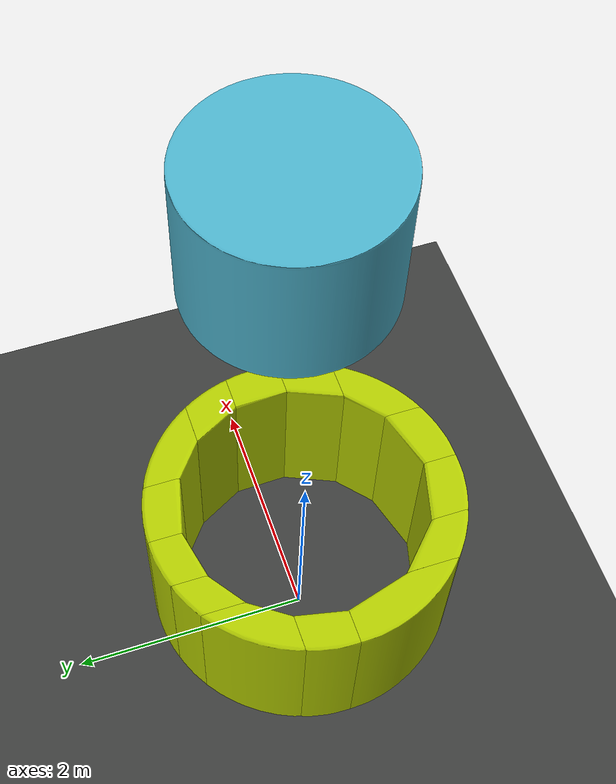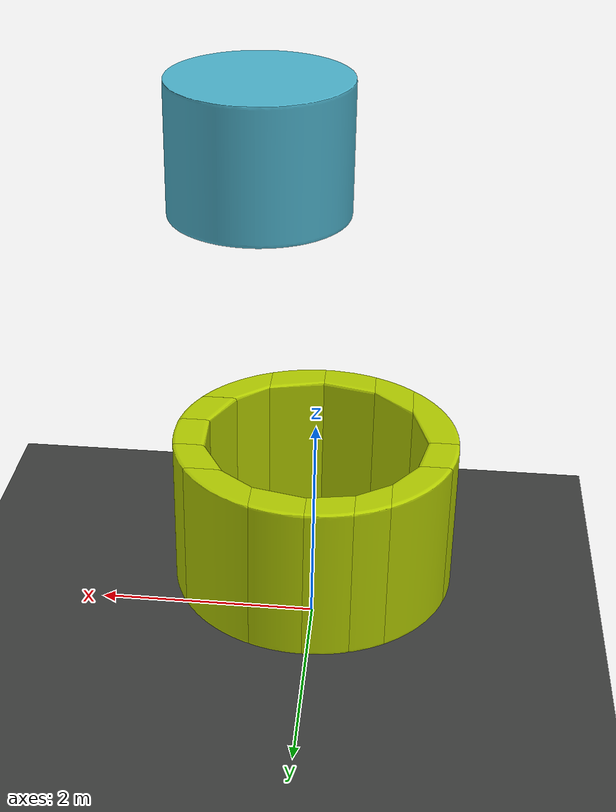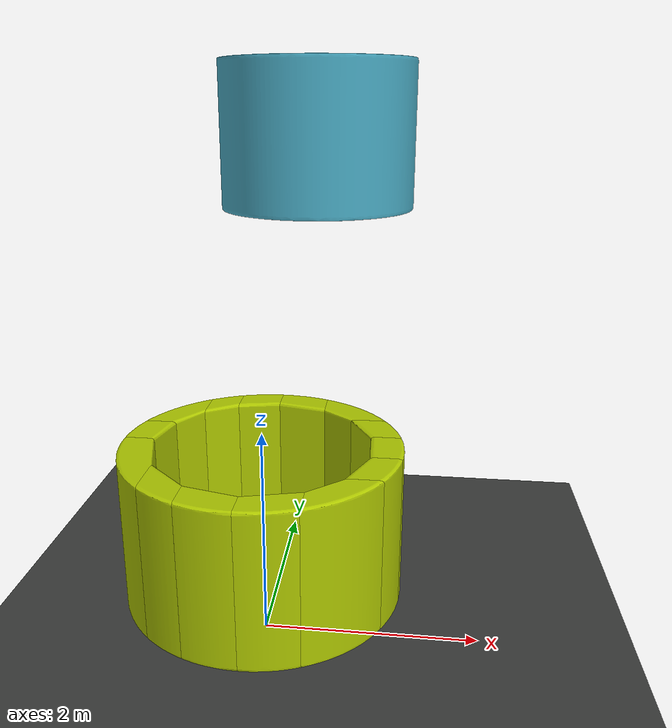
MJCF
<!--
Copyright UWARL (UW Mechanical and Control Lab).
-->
<mujoco model="playground_wagon_manipulation(v1.0.0)">
    <!--#########################
        ### Compiler Specific ###
        ######################### -->
    <compiler coordinate="local" angle="radian" meshdir="../meshes/" texturedir="../textures/"/>

    <!-- Options: -->
    <option
        timestep="2.5e-3"
        iterations="10"
        tolerance="1e-10"
        impratio="1"
        gravity="0 0 -9.81"
        solver="Newton"
        cone="elliptic"
    />

    <default>
        <geom margin="0.001" solimp="0.99 0.99 0.01" solref="0.01 1" condim="4" />
    </default>

    <!--##############
        ### IMPORT ###
        ############## -->
    <asset>
        <mesh name="Cylinder_with_Hole" file="meshes_peg_in_hole/Cylinder_with_Hole.obj" scale="0.01 0.01 0.01"/>
        <mesh name="Cylinder_with_Hole_0" file="meshes_peg_in_hole/Cylinder_with_Hole_collision_0.obj" scale="0.01 0.01 0.01"/>
        <mesh name="Cylinder_with_Hole_1" file="meshes_peg_in_hole/Cylinder_with_Hole_collision_1.obj" scale="0.01 0.01 0.01"/>
        <mesh name="Cylinder_with_Hole_2" file="meshes_peg_in_hole/Cylinder_with_Hole_collision_2.obj" scale="0.01 0.01 0.01"/>
        <mesh name="Cylinder_with_Hole_3" file="meshes_peg_in_hole/Cylinder_with_Hole_collision_3.obj" scale="0.01 0.01 0.01"/>
        <mesh name="Cylinder_with_Hole_4" file="meshes_peg_in_hole/Cylinder_with_Hole_collision_4.obj" scale="0.01 0.01 0.01"/>
        <mesh name="Cylinder_with_Hole_5" file="meshes_peg_in_hole/Cylinder_with_Hole_collision_5.obj" scale="0.01 0.01 0.01"/>
        <mesh name="Cylinder_with_Hole_6" file="meshes_peg_in_hole/Cylinder_with_Hole_collision_6.obj" scale="0.01 0.01 0.01"/>
        <mesh name="Cylinder_with_Hole_7" file="meshes_peg_in_hole/Cylinder_with_Hole_collision_7.obj" scale="0.01 0.01 0.01"/>
        <mesh name="Cylinder_with_Hole_8" file="meshes_peg_in_hole/Cylinder_with_Hole_collision_8.obj" scale="0.01 0.01 0.01"/>
        <mesh name="Cylinder_with_Hole_9" file="meshes_peg_in_hole/Cylinder_with_Hole_collision_9.obj" scale="0.01 0.01 0.01"/>
        <mesh name="Cylinder_with_Hole_10" file="meshes_peg_in_hole/Cylinder_with_Hole_collision_10.obj" scale="0.01 0.01 0.01"/>
        <mesh name="Cylinder_with_Hole_11" file="meshes_peg_in_hole/Cylinder_with_Hole_collision_11.obj" scale="0.01 0.01 0.01"/>
        <mesh name="Cylinder_with_Hole_12" file="meshes_peg_in_hole/Cylinder_with_Hole_collision_12.obj" scale="0.01 0.01 0.01"/>
        <mesh name="Cylinder_with_Hole_13" file="meshes_peg_in_hole/Cylinder_with_Hole_collision_13.obj" scale="0.01 0.01 0.01"/>
        <mesh name="Peg" file="meshes_peg_in_hole/Peg.obj" scale="0.01 0.01 0.01"/>
        <mesh name="Peg_0" file="meshes_peg_in_hole/Peg_collision_0.obj" scale="0.01 0.01 0.01"/>

        <texture name="groundplane" type="2d" builtin="checker" rgb1=".25 .26 .25"
            rgb2=".22 .22 .22" width="100" height="100" mark="edge" markrgb=".3 .3 .3"/>
        <material name="MatGnd" texture="groundplane"  texrepeat="5 5" specular="1" shininess=".001" reflectance="0.00001"/>

    </asset>

    <!--###############
        ### Config: ###
        ############### -->
    <equality>
    <!-- TBD -->
    </equality>

    <visual>
        <map fogstart="3" fogend="5" force="0.1" znear="0.001"/>
        <quality shadowsize="4096" offsamples="16"/>
    </visual>

    <!--####################
        ### Hello World: ###
        #################### -->
    <worldbody>
        <!-- GND -->
        <light directional="true" cutoff="60" exponent="1" diffuse="1 1 1" specular=".1 .1 .1" pos=".4 .4 5.2" dir="-.1 -.2 -1.3"/>
        <geom name="ground" type="plane" pos="0 0 0" size="20 20 1" conaffinity="1" contype="1" material="MatGnd" friction="0.0001 0.001 0.001" group="1"/>

        <!-- Cylinder wih Hole -->
        <body name="cylinder_with_hole" pos="0 0 0.5" euler="0 0 0">
            <inertial pos="1 1 1" mass="1"/>
            <!-- group=1 implies that this form can be seen initially -->
            <!-- https://mujoco.readthedocs.io/en/stable/XMLreference.html#body-geom -->
            <geom name="cylinder_with_Hole" type="mesh" contype="0" conaffinity="0" group="1" rgba="0.9 0 0 1"  mesh="Cylinder_with_Hole"/>

            <geom name="cylinder_with_Hole_0" type="mesh" contype="1" conaffinity="5" group="0" rgba="0.7 0.8 0 1"  mesh="Cylinder_with_Hole_0"/>
            <geom name="cylinder_with_Hole_1" type="mesh" contype="1" conaffinity="5" group="0" rgba="0.7 0.8 0 1"  mesh="Cylinder_with_Hole_1"/>
            <geom name="cylinder_with_Hole_2" type="mesh" contype="1" conaffinity="5" group="0" rgba="0.7 0.8 0 1"  mesh="Cylinder_with_Hole_2"/>
            <geom name="cylinder_with_Hole_3" type="mesh" contype="1" conaffinity="5" group="0" rgba="0.7 0.8 0 1"  mesh="Cylinder_with_Hole_3"/>
            <geom name="cylinder_with_Hole_4" type="mesh" contype="1" conaffinity="5" group="0" rgba="0.7 0.8 0 1"  mesh="Cylinder_with_Hole_4"/>
            <geom name="cylinder_with_Hole_5" type="mesh" contype="1" conaffinity="5" group="0" rgba="0.7 0.8 0 1"  mesh="Cylinder_with_Hole_5"/>
            <geom name="cylinder_with_Hole_6" type="mesh" contype="1" conaffinity="5" group="0" rgba="0.7 0.8 0 1"  mesh="Cylinder_with_Hole_6"/>
            <geom name="cylinder_with_Hole_7" type="mesh" contype="1" conaffinity="5" group="0" rgba="0.7 0.8 0 1"  mesh="Cylinder_with_Hole_7"/>
            <geom name="cylinder_with_Hole_8" type="mesh" contype="1" conaffinity="5" group="0" rgba="0.7 0.8 0 1"  mesh="Cylinder_with_Hole_8"/>
            <geom name="cylinder_with_Hole_9" type="mesh" contype="1" conaffinity="5" group="0" rgba="0.7 0.8 0 1"  mesh="Cylinder_with_Hole_9"/>
            <geom name="cylinder_with_Hole_10" type="mesh" contype="1" conaffinity="5" group="0" rgba="0.7 0.8 0 1"  mesh="Cylinder_with_Hole_10"/>
            <geom name="cylinder_with_Hole_11" type="mesh" contype="1" conaffinity="5" group="0" rgba="0.7 0.8 0 1"  mesh="Cylinder_with_Hole_11"/>
            <geom name="cylinder_with_Hole_12" type="mesh" contype="1" conaffinity="5" group="0" rgba="0.7 0.8 0 1"  mesh="Cylinder_with_Hole_12"/>
            <geom name="cylinder_with_Hole_13" type="mesh" contype="1" conaffinity="5" group="0" rgba="0.7 0.8 0 1"  mesh="Cylinder_with_Hole_13"/>
        </body>

        <!-- Peg -->
        <body name="peg" pos="0.5 0 4" euler="0 0 0">
            <freejoint name="free"/>
            <geom name="pEg" type="mesh" contype="0" conaffinity="0" group="1" rgba="0 0.8 0 1" mesh="Peg"/>
            <geom name="pEg_col" type="mesh" contype="1" conaffinity="5" group="0" rgba="0.3 0.7 0.8 1" mesh="Peg_0"/>
        </body>

    </worldbody>

    <contact>
    <!-- NOTE: Exclude overlapping collision mesh to be used in contact physics.  -->

    </contact>

</mujoco>
